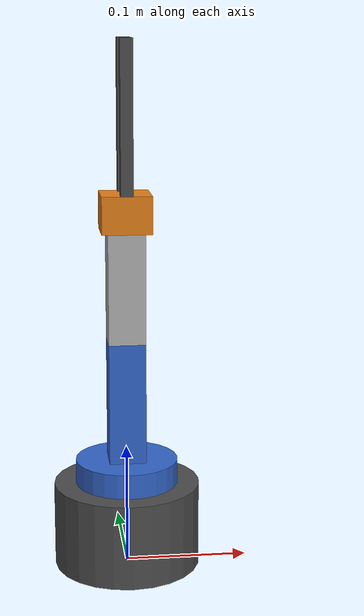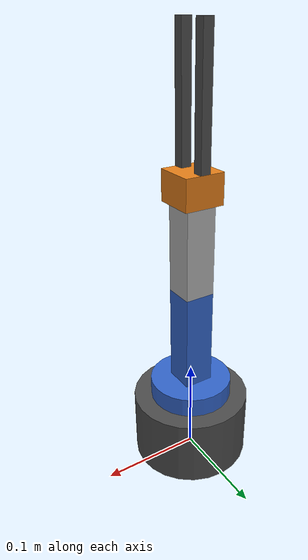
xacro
<?xml version="1.0"?>
<robot xmlns:xacro="http://www.ros.org/wiki/xacro" name="manipulator_rrrr">

  <!--       PROPERTIES         -->
  <!-- Link lengths (meters) — must match arm_ik_2d.py geometry -->
  <!-- BASE_Y=0.09: base_height(0.07) + turntable(0.02) = 0.09 -->
  <!-- L1=0.10, L2=0.09, L3=0.15: gripper_base(0.03) + gripper_length(0.12) = 0.15 -->
  <xacro:property name="base_height"  value="0.07"/>
  <xacro:property name="base_radius"  value="0.06"/>
  <xacro:property name="link1_length" value="0.10"/>
  <xacro:property name="link2_length" value="0.09"/>
  <xacro:property name="gripper_length" value="0.12"/>

  <!-- Link cross-section -->
  <xacro:property name="link_width"  value="0.03"/>
  <xacro:property name="link_depth"  value="0.03"/>

  <!-- Masses (kg) -->
  <xacro:property name="base_mass"    value="0.150"/>
  <xacro:property name="link1_mass"   value="0.095"/>
  <xacro:property name="link2_mass"   value="0.095"/>
  <xacro:property name="gripper_mass" value="0.080"/>
  <xacro:property name="finger_mass"  value="0.010"/>

  <!-- Servo limits -->
  <xacro:property name="j2_lower" value="${-pi/2}"/>
  <xacro:property name="j2_upper" value="${pi/2}"/>
  <xacro:property name="j3_lower" value="${-pi/2}"/>
  <xacro:property name="j3_upper" value="${pi/2}"/>
  <xacro:property name="j4_lower" value="${-pi/2}"/>
  <xacro:property name="j4_upper" value="${pi/2}"/>
  <xacro:property name="grip_lower" value="0.0"/>
  <xacro:property name="grip_upper" value="0.03"/>

  <!-- Colors -->
  <material name="dark_gray">
    <color rgba="0.3 0.3 0.3 1.0"/>
  </material>
  <material name="blue">
    <color rgba="0.2 0.4 0.8 1.0"/>
  </material>
  <material name="light_gray">
    <color rgba="0.7 0.7 0.7 1.0"/>
  </material>
  <material name="orange">
    <color rgba="0.9 0.5 0.1 1.0"/>
  </material>

  <!--     INERTIA MACROS       -->
  <xacro:macro name="box_inertia" params="m x y z">
    <inertial>
      <mass value="${m}"/>
      <inertia ixx="${m*(y*y+z*z)/12}" ixy="0" ixz="0"
               iyy="${m*(x*x+z*z)/12}" iyz="0"
               izz="${m*(x*x+y*y)/12}"/>
    </inertial>
  </xacro:macro>

  <xacro:macro name="cylinder_inertia" params="m r h">
    <inertial>
      <mass value="${m}"/>
      <inertia ixx="${m*(3*r*r+h*h)/12}" ixy="0" ixz="0"
               iyy="${m*(3*r*r+h*h)/12}" iyz="0"
               izz="${m*r*r/2}"/>
    </inertial>
  </xacro:macro>

  <!--        WORLD LINK        -->
  <link name="world"/>
  <joint name="fixed_base" type="fixed">
    <parent link="world"/>
    <child link="base_link"/>
    <origin xyz="0 0 0" rpy="0 0 0"/>
  </joint>

  <!--       BASE LINK          -->
  <link name="base_link">
    <visual>
      <geometry>
        <cylinder radius="${base_radius}" length="${base_height}"/>
      </geometry>
      <origin xyz="0 0 ${base_height/2}" rpy="0 0 0"/>
      <material name="dark_gray"/>
    </visual>
    <collision>
      <geometry>
        <cylinder radius="${base_radius}" length="${base_height}"/>
      </geometry>
      <origin xyz="0 0 ${base_height/2}" rpy="0 0 0"/>
    </collision>
    <xacro:cylinder_inertia m="${base_mass}" r="${base_radius}" h="${base_height}"/>
  </link>

  <!--   J1 — BASE YAW          -->
  <joint name="joint1" type="continuous">
    <parent link="base_link"/>
    <child link="turntable_link"/>
    <origin xyz="0 0 ${base_height}" rpy="0 0 0"/>
    <axis xyz="0 0 1"/>
    <limit effort="2.2" velocity="3.14"/>
  </joint>

  <link name="turntable_link">
    <visual>
      <geometry>
        <cylinder radius="${base_radius*0.7}" length="0.02"/>
      </geometry>
      <origin xyz="0 0 0.01" rpy="0 0 0"/>
      <material name="blue"/>
    </visual>
    <collision>
      <geometry>
        <cylinder radius="${base_radius*0.7}" length="0.02"/>
      </geometry>
      <origin xyz="0 0 0.01" rpy="0 0 0"/>
    </collision>
    <xacro:cylinder_inertia m="0.03" r="${base_radius*0.7}" h="0.02"/>
  </link>

  <!--  J2 — SHOULDER PITCH     -->
  <joint name="joint2" type="revolute">
    <parent link="turntable_link"/>
    <child link="link1"/>
    <origin xyz="0 0 0.02" rpy="0 0 0"/>
    <axis xyz="0 1 0"/>
    <limit lower="${j2_lower}" upper="${j2_upper}" effort="4.8" velocity="3.14"/>
  </joint>

  <link name="link1">
    <visual>
      <geometry>
        <box size="${link_width} ${link_depth} ${link1_length}"/>
      </geometry>
      <origin xyz="0 0 ${link1_length/2}" rpy="0 0 0"/>
      <material name="blue"/>
    </visual>
    <collision>
      <geometry>
        <box size="${link_width} ${link_depth} ${link1_length}"/>
      </geometry>
      <origin xyz="0 0 ${link1_length/2}" rpy="0 0 0"/>
    </collision>
    <xacro:box_inertia m="${link1_mass}" x="${link_width}" y="${link_depth}" z="${link1_length}"/>
  </link>

  <!--   J3 — ELBOW PITCH       -->
  <joint name="joint3" type="revolute">
    <parent link="link1"/>
    <child link="link2"/>
    <origin xyz="0 0 ${link1_length}" rpy="0 0 0"/>
    <axis xyz="0 1 0"/>
    <limit lower="${j3_lower}" upper="${j3_upper}" effort="2.2" velocity="3.14"/>
  </joint>

  <link name="link2">
    <visual>
      <geometry>
        <box size="${link_width} ${link_depth} ${link2_length}"/>
      </geometry>
      <origin xyz="0 0 ${link2_length/2}" rpy="0 0 0"/>
      <material name="light_gray"/>
    </visual>
    <collision>
      <geometry>
        <box size="${link_width} ${link_depth} ${link2_length}"/>
      </geometry>
      <origin xyz="0 0 ${link2_length/2}" rpy="0 0 0"/>
    </collision>
    <xacro:box_inertia m="${link2_mass}" x="${link_width}" y="${link_depth}" z="${link2_length}"/>
  </link>

  <!--    J4 — WRIST PITCH      -->
  <joint name="joint4" type="revolute">
    <parent link="link2"/>
    <child link="gripper_base"/>
    <origin xyz="0 0 ${link2_length}" rpy="0 0 0"/>
    <axis xyz="0 1 0"/>
    <limit lower="${j4_lower}" upper="${j4_upper}" effort="2.2" velocity="3.14"/>
  </joint>

  <link name="gripper_base">
    <visual>
      <geometry>
        <box size="0.04 0.04 0.03"/>
      </geometry>
      <origin xyz="0 0 0.015" rpy="0 0 0"/>
      <material name="orange"/>
    </visual>
    <collision>
      <geometry>
        <box size="0.04 0.04 0.03"/>
      </geometry>
      <origin xyz="0 0 0.015" rpy="0 0 0"/>
    </collision>
    <xacro:box_inertia m="${gripper_mass*0.5}" x="0.04" y="0.04" z="0.03"/>
  </link>

  <!--    GRIPPER FINGERS       -->
  <!-- Left finger -->
  <joint name="finger_left_joint" type="prismatic">
    <parent link="gripper_base"/>
    <child link="finger_left"/>
    <origin xyz="0 -0.015 0.03" rpy="0 0 0"/>
    <axis xyz="0 1 0"/>
    <limit lower="${-grip_upper}" upper="0" effort="2.2" velocity="0.1"/>
  </joint>

  <link name="finger_left">
    <visual>
      <geometry>
        <box size="0.01 0.01 ${gripper_length}"/>
      </geometry>
      <origin xyz="0 0 ${gripper_length/2}" rpy="0 0 0"/>
      <material name="dark_gray"/>
    </visual>
    <collision>
      <geometry>
        <box size="0.01 0.01 ${gripper_length}"/>
      </geometry>
      <origin xyz="0 0 ${gripper_length/2}" rpy="0 0 0"/>
    </collision>
    <xacro:box_inertia m="${finger_mass}" x="0.01" y="0.01" z="${gripper_length}"/>
  </link>

  <!-- Right finger -->
  <joint name="finger_right_joint" type="prismatic">
    <parent link="gripper_base"/>
    <child link="finger_right"/>
    <origin xyz="0 0.015 0.03" rpy="0 0 0"/>
    <axis xyz="0 -1 0"/>
    <limit lower="${-grip_upper}" upper="0" effort="2.2" velocity="0.1"/>
  </joint>

  <link name="finger_right">
    <visual>
      <geometry>
        <box size="0.01 0.01 ${gripper_length}"/>
      </geometry>
      <origin xyz="0 0 ${gripper_length/2}" rpy="0 0 0"/>
      <material name="dark_gray"/>
    </visual>
    <collision>
      <geometry>
        <box size="0.01 0.01 ${gripper_length}"/>
      </geometry>
      <origin xyz="0 0 ${gripper_length/2}" rpy="0 0 0"/>
    </collision>
    <xacro:box_inertia m="${finger_mass}" x="0.01" y="0.01" z="${gripper_length}"/>
  </link>

</robot>
